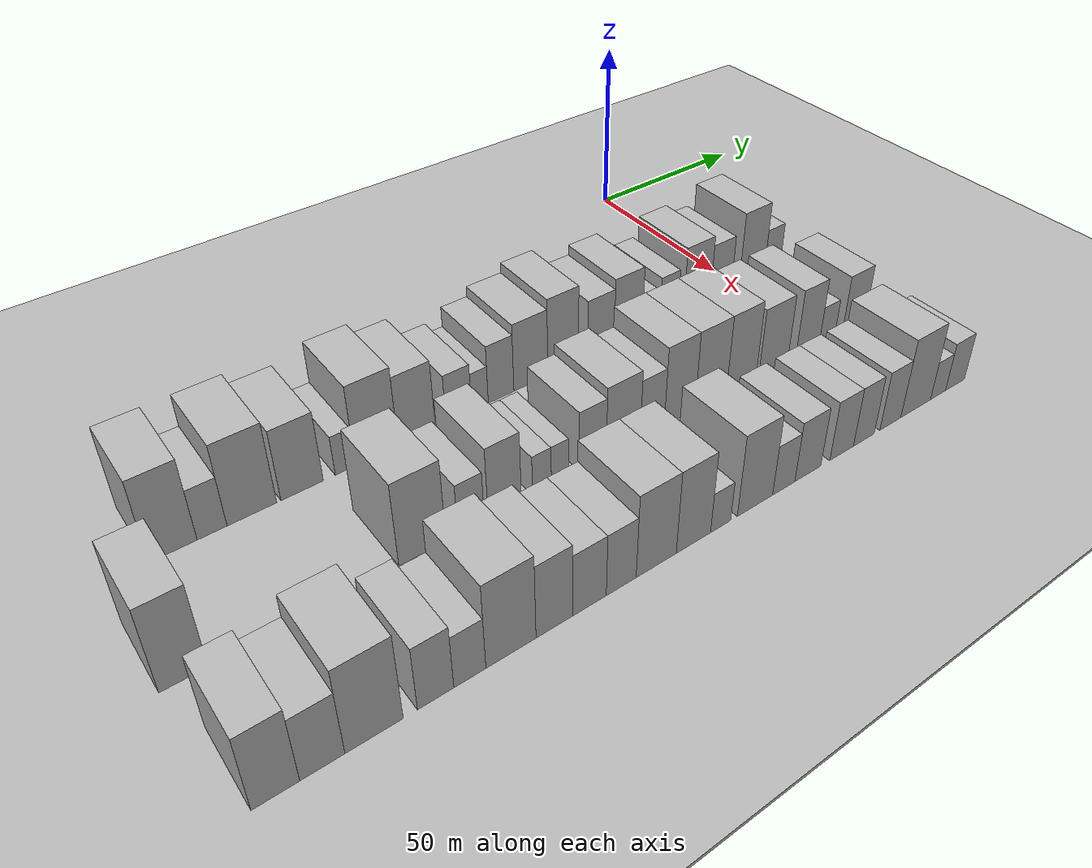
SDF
<sdf version="1.6">
 <world name="default">
  <include><name>ground_plane_1</name><uri>model://HANNAS_ground_plane</uri></include>
  <include>
   <name>ground_plane_2</name>
   <uri>model://HANNAS_ground_plane</uri>
   <pose>100 0 0  0 0 0</pose>
  </include>
  <model name="building_22">
   <static>1</static>
   <pose>50.0000 -163.7827 0 0.000000 0.000000 0.000000</pose>
   <link name="link">
    <pose>0 0 12.00 0 0 0</pose>
    <collision name="collision"><geometry><box><size>20.0000 10.5719 24.0000</size></box></geometry></collision>
    <visual name="visual">
     <cast_shadows>0</cast_shadows>
     <geometry><box><size>20.0000 10.5719 24.0000</size></box></geometry>
     <material>
      <script>
       <uri>model://HANNAS_wall/materials/scripts</uri>
       <uri>model://HANNAS_wall/materials/textures</uri>
       <name>vrc/HANNAS_wall</name>
      </script>
     </material>
    </visual>
   </link>
  </model>
  <model name="building_23">
   <static>1</static>
   <pose>50.0000 -155.1329 0 0.000000 0.000000 0.000000</pose>
   <link name="link">
    <pose>0 0 7.50 0 0 0</pose>
    <collision name="collision"><geometry><box><size>20.0000 6.7278 15.0000</size></box></geometry></collision>
    <visual name="visual">
     <cast_shadows>0</cast_shadows>
     <geometry><box><size>20.0000 6.7278 15.0000</size></box></geometry>
     <material>
      <script>
       <uri>model://HANNAS_wall/materials/scripts</uri>
       <uri>model://HANNAS_wall/materials/textures</uri>
       <name>vrc/HANNAS_wall</name>
      </script>
     </material>
    </visual>
   </link>
  </model>
  <model name="building_24">
   <static>1</static>
   <pose>50.0000 -145.9663 0 0.000000 0.000000 0.000000</pose>
   <link name="link">
    <pose>0 0 12.00 0 0 0</pose>
    <collision name="collision"><geometry><box><size>20.0000 11.6054 24.0000</size></box></geometry></collision>
    <visual name="visual">
     <cast_shadows>0</cast_shadows>
     <geometry><box><size>20.0000 11.6054 24.0000</size></box></geometry>
     <material>
      <script>
       <uri>model://HANNAS_wall/materials/scripts</uri>
       <uri>model://HANNAS_wall/materials/textures</uri>
       <name>vrc/HANNAS_wall</name>
      </script>
     </material>
    </visual>
   </link>
  </model>
  <model name="building_25">
   <static>1</static>
   <pose>50.0000 -133.9820 0 0.000000 0.000000 0.000000</pose>
   <link name="link">
    <pose>0 0 10.50 0 0 0</pose>
    <collision name="collision"><geometry><box><size>20.0000 10.3632 21.0000</size></box></geometry></collision>
    <visual name="visual">
     <cast_shadows>0</cast_shadows>
     <geometry><box><size>20.0000 10.3632 21.0000</size></box></geometry>
     <material>
      <script>
       <uri>model://HANNAS_wall/materials/scripts</uri>
       <uri>model://HANNAS_wall/materials/textures</uri>
       <name>vrc/HANNAS_wall</name>
      </script>
     </material>
    </visual>
   </link>
  </model>
  <model name="building_26">
   <static>1</static>
   <pose>50.0000 -123.2500 0 0.000000 0.000000 0.000000</pose>
   <link name="link">
    <pose>0 0 6.00 0 0 0</pose>
    <collision name="collision"><geometry><box><size>20.0000 5.1008 12.0000</size></box></geometry></collision>
    <visual name="visual">
     <cast_shadows>0</cast_shadows>
     <geometry><box><size>20.0000 5.1008 12.0000</size></box></geometry>
     <material>
      <script>
       <uri>model://HANNAS_wall/materials/scripts</uri>
       <uri>model://HANNAS_wall/materials/textures</uri>
       <name>vrc/HANNAS_wall</name>
      </script>
     </material>
    </visual>
   </link>
  </model>
  <model name="building_27">
   <static>1</static>
   <pose>50.0000 -115.0750 0 0.000000 0.000000 0.000000</pose>
   <link name="link">
    <pose>0 0 12.00 0 0 0</pose>
    <collision name="collision"><geometry><box><size>20.0000 11.2492 24.0000</size></box></geometry></collision>
    <visual name="visual">
     <cast_shadows>0</cast_shadows>
     <geometry><box><size>20.0000 11.2492 24.0000</size></box></geometry>
     <material>
      <script>
       <uri>model://HANNAS_wall/materials/scripts</uri>
       <uri>model://HANNAS_wall/materials/textures</uri>
       <name>vrc/HANNAS_wall</name>
      </script>
     </material>
    </visual>
   </link>
  </model>
  <model name="building_28">
   <static>1</static>
   <pose>50.0000 -104.3734 0 0.000000 0.000000 0.000000</pose>
   <link name="link">
    <pose>0 0 10.50 0 0 0</pose>
    <collision name="collision"><geometry><box><size>20.0000 10.1541 21.0000</size></box></geometry></collision>
    <visual name="visual">
     <cast_shadows>0</cast_shadows>
     <geometry><box><size>20.0000 10.1541 21.0000</size></box></geometry>
     <material>
      <script>
       <uri>model://HANNAS_wall/materials/scripts</uri>
       <uri>model://HANNAS_wall/materials/textures</uri>
       <name>vrc/HANNAS_wall</name>
      </script>
     </material>
    </visual>
   </link>
  </model>
  <model name="building_29">
   <static>1</static>
   <pose>50.0000 -92.6563 0 0.000000 0.000000 0.000000</pose>
   <link name="link">
    <pose>0 0 7.50 0 0 0</pose>
    <collision name="collision"><geometry><box><size>20.0000 7.2801 15.0000</size></box></geometry></collision>
    <visual name="visual">
     <cast_shadows>0</cast_shadows>
     <geometry><box><size>20.0000 7.2801 15.0000</size></box></geometry>
     <material>
      <script>
       <uri>model://HANNAS_wall/materials/scripts</uri>
       <uri>model://HANNAS_wall/materials/textures</uri>
       <name>vrc/HANNAS_wall</name>
      </script>
     </material>
    </visual>
   </link>
  </model>
  <model name="building_30">
   <static>1</static>
   <pose>50.0000 -86.5991 0 0.000000 0.000000 0.000000</pose>
   <link name="link">
    <pose>0 0 6.00 0 0 0</pose>
    <collision name="collision"><geometry><box><size>20.0000 4.8341 12.0000</size></box></geometry></collision>
    <visual name="visual">
     <cast_shadows>0</cast_shadows>
     <geometry><box><size>20.0000 4.8341 12.0000</size></box></geometry>
     <material>
      <script>
       <uri>model://HANNAS_wall/materials/scripts</uri>
       <uri>model://HANNAS_wall/materials/textures</uri>
       <name>vrc/HANNAS_wall</name>
      </script>
     </material>
    </visual>
   </link>
  </model>
  <model name="building_31">
   <static>1</static>
   <pose>50.0000 -80.3739 0 0.000000 0.000000 0.000000</pose>
   <link name="link">
    <pose>0 0 9.00 0 0 0</pose>
    <collision name="collision"><geometry><box><size>20.0000 7.6165 18.0000</size></box></geometry></collision>
    <visual name="visual">
     <cast_shadows>0</cast_shadows>
     <geometry><box><size>20.0000 7.6165 18.0000</size></box></geometry>
     <material>
      <script>
       <uri>model://HANNAS_wall/materials/scripts</uri>
       <uri>model://HANNAS_wall/materials/textures</uri>
       <name>vrc/HANNAS_wall</name>
      </script>
     </material>
    </visual>
   </link>
  </model>
  <model name="building_32">
   <static>1</static>
   <pose>50.0000 -71.3733 0 0.000000 0.000000 0.000000</pose>
   <link name="link">
    <pose>0 0 10.50 0 0 0</pose>
    <collision name="collision"><geometry><box><size>20.0000 10.3846 21.0000</size></box></geometry></collision>
    <visual name="visual">
     <cast_shadows>0</cast_shadows>
     <geometry><box><size>20.0000 10.3846 21.0000</size></box></geometry>
     <material>
      <script>
       <uri>model://HANNAS_wall/materials/scripts</uri>
       <uri>model://HANNAS_wall/materials/textures</uri>
       <name>vrc/HANNAS_wall</name>
      </script>
     </material>
    </visual>
   </link>
  </model>
  <model name="building_33">
   <static>1</static>
   <pose>50.0000 -61.3326 0 0.000000 0.000000 0.000000</pose>
   <link name="link">
    <pose>0 0 12.00 0 0 0</pose>
    <collision name="collision"><geometry><box><size>20.0000 9.6969 24.0000</size></box></geometry></collision>
    <visual name="visual">
     <cast_shadows>0</cast_shadows>
     <geometry><box><size>20.0000 9.6969 24.0000</size></box></geometry>
     <material>
      <script>
       <uri>model://HANNAS_wall/materials/scripts</uri>
       <uri>model://HANNAS_wall/materials/textures</uri>
       <name>vrc/HANNAS_wall</name>
      </script>
     </material>
    </visual>
   </link>
  </model>
  <model name="building_34">
   <static>1</static>
   <pose>50.0000 -49.1256 0 0.000000 0.000000 0.000000</pose>
   <link name="link">
    <pose>0 0 9.00 0 0 0</pose>
    <collision name="collision"><geometry><box><size>20.0000 8.7171 18.0000</size></box></geometry></collision>
    <visual name="visual">
     <cast_shadows>0</cast_shadows>
     <geometry><box><size>20.0000 8.7171 18.0000</size></box></geometry>
     <material>
      <script>
       <uri>model://HANNAS_wall/materials/scripts</uri>
       <uri>model://HANNAS_wall/materials/textures</uri>
       <name>vrc/HANNAS_wall</name>
      </script>
     </material>
    </visual>
   </link>
  </model>
  <model name="building_35">
   <static>1</static>
   <pose>50.0000 -40.0122 0 0.000000 0.000000 0.000000</pose>
   <link name="link">
    <pose>0 0 10.50 0 0 0</pose>
    <collision name="collision"><geometry><box><size>20.0000 9.5096 21.0000</size></box></geometry></collision>
    <visual name="visual">
     <cast_shadows>0</cast_shadows>
     <geometry><box><size>20.0000 9.5096 21.0000</size></box></geometry>
     <material>
      <script>
       <uri>model://HANNAS_wall/materials/scripts</uri>
       <uri>model://HANNAS_wall/materials/textures</uri>
       <name>vrc/HANNAS_wall</name>
      </script>
     </material>
    </visual>
   </link>
  </model>
  <model name="building_36">
   <static>1</static>
   <pose>50.0000 -32.6722 0 0.000000 0.000000 0.000000</pose>
   <link name="link">
    <pose>0 0 6.00 0 0 0</pose>
    <collision name="collision"><geometry><box><size>20.0000 5.1704 12.0000</size></box></geometry></collision>
    <visual name="visual">
     <cast_shadows>0</cast_shadows>
     <geometry><box><size>20.0000 5.1704 12.0000</size></box></geometry>
     <material>
      <script>
       <uri>model://HANNAS_wall/materials/scripts</uri>
       <uri>model://HANNAS_wall/materials/textures</uri>
       <name>vrc/HANNAS_wall</name>
      </script>
     </material>
    </visual>
   </link>
  </model>
  <model name="building_37">
   <static>1</static>
   <pose>50.0000 -25.8383 0 0.000000 0.000000 0.000000</pose>
   <link name="link">
    <pose>0 0 7.50 0 0 0</pose>
    <collision name="collision"><geometry><box><size>20.0000 6.4973 15.0000</size></box></geometry></collision>
    <visual name="visual">
     <cast_shadows>0</cast_shadows>
     <geometry><box><size>20.0000 6.4973 15.0000</size></box></geometry>
     <material>
      <script>
       <uri>model://HANNAS_wall/materials/scripts</uri>
       <uri>model://HANNAS_wall/materials/textures</uri>
       <name>vrc/HANNAS_wall</name>
      </script>
     </material>
    </visual>
   </link>
  </model>
  <model name="building_38">
   <static>1</static>
   <pose>50.0000 -15.7071 0 0.000000 0.000000 0.000000</pose>
   <link name="link">
    <pose>0 0 10.50 0 0 0</pose>
    <collision name="collision"><geometry><box><size>20.0000 9.7650 21.0000</size></box></geometry></collision>
    <visual name="visual">
     <cast_shadows>0</cast_shadows>
     <geometry><box><size>20.0000 9.7650 21.0000</size></box></geometry>
     <material>
      <script>
       <uri>model://HANNAS_wall/materials/scripts</uri>
       <uri>model://HANNAS_wall/materials/textures</uri>
       <name>vrc/HANNAS_wall</name>
      </script>
     </material>
    </visual>
   </link>
  </model>
  <model name="building_39">
   <static>1</static>
   <pose>50.0000 -6.8539 0 0.000000 0.000000 0.000000</pose>
   <link name="link">
    <pose>0 0 9.00 0 0 0</pose>
    <collision name="collision"><geometry><box><size>20.0000 7.9415 18.0000</size></box></geometry></collision>
    <visual name="visual">
     <cast_shadows>0</cast_shadows>
     <geometry><box><size>20.0000 7.9415 18.0000</size></box></geometry>
     <material>
      <script>
       <uri>model://HANNAS_wall/materials/scripts</uri>
       <uri>model://HANNAS_wall/materials/textures</uri>
       <name>vrc/HANNAS_wall</name>
      </script>
     </material>
    </visual>
   </link>
  </model>
  <model name="building_40">
   <static>1</static>
   <pose>50.0000 4.9906 0 0.000000 0.000000 0.000000</pose>
   <link name="link">
    <pose>0 0 12.00 0 0 0</pose>
    <collision name="collision"><geometry><box><size>20.0000 9.7473 24.0000</size></box></geometry></collision>
    <visual name="visual">
     <cast_shadows>0</cast_shadows>
     <geometry><box><size>20.0000 9.7473 24.0000</size></box></geometry>
     <material>
      <script>
       <uri>model://HANNAS_wall/materials/scripts</uri>
       <uri>model://HANNAS_wall/materials/textures</uri>
       <name>vrc/HANNAS_wall</name>
      </script>
     </material>
    </visual>
   </link>
  </model>
  <model name="building_41">
   <static>1</static>
   <pose>50.0000 13.0793 0 0.000000 0.000000 0.000000</pose>
   <link name="link">
    <pose>0 0 7.50 0 0 0</pose>
    <collision name="collision"><geometry><box><size>20.0000 6.4302 15.0000</size></box></geometry></collision>
    <visual name="visual">
     <cast_shadows>0</cast_shadows>
     <geometry><box><size>20.0000 6.4302 15.0000</size></box></geometry>
     <material>
      <script>
       <uri>model://HANNAS_wall/materials/scripts</uri>
       <uri>model://HANNAS_wall/materials/textures</uri>
       <name>vrc/HANNAS_wall</name>
      </script>
     </material>
    </visual>
   </link>
  </model>
  <model name="building_100">
   <static>1</static>
   <pose>82.0000 -174.0727 0 0.000000 0.000000 0.000000</pose>
   <link name="link">
    <pose>0 0 12.00 0 0 0</pose>
    <collision name="collision"><geometry><box><size>20.0000 9.6658 24.0000</size></box></geometry></collision>
    <visual name="visual">
     <cast_shadows>0</cast_shadows>
     <geometry><box><size>20.0000 9.6658 24.0000</size></box></geometry>
     <material>
      <script>
       <uri>model://HANNAS_wall/materials/scripts</uri>
       <uri>model://HANNAS_wall/materials/textures</uri>
       <name>vrc/HANNAS_wall</name>
      </script>
     </material>
    </visual>
   </link>
  </model>
  <model name="building_101">
   <static>1</static>
   <pose>82.0000 -121.9243 0 0.000000 0.000000 0.000000</pose>
   <link name="link">
    <pose>0 0 12.00 0 0 0</pose>
    <collision name="collision"><geometry><box><size>20.0000 11.5437 24.0000</size></box></geometry></collision>
    <visual name="visual">
     <cast_shadows>0</cast_shadows>
     <geometry><box><size>20.0000 11.5437 24.0000</size></box></geometry>
     <material>
      <script>
       <uri>model://HANNAS_wall/materials/scripts</uri>
       <uri>model://HANNAS_wall/materials/textures</uri>
       <name>vrc/HANNAS_wall</name>
      </script>
     </material>
    </visual>
   </link>
  </model>
  <model name="building_102">
   <static>1</static>
   <pose>82.0000 -109.7860 0 0.000000 0.000000 0.000000</pose>
   <link name="link">
    <pose>0 0 7.50 0 0 0</pose>
    <collision name="collision"><geometry><box><size>20.0000 6.7328 15.0000</size></box></geometry></collision>
    <visual name="visual">
     <cast_shadows>0</cast_shadows>
     <geometry><box><size>20.0000 6.7328 15.0000</size></box></geometry>
     <material>
      <script>
       <uri>model://HANNAS_wall/materials/scripts</uri>
       <uri>model://HANNAS_wall/materials/textures</uri>
       <name>vrc/HANNAS_wall</name>
      </script>
     </material>
    </visual>
   </link>
  </model>
  <model name="building_103">
   <static>1</static>
   <pose>82.0000 -101.0111 0 0.000000 0.000000 0.000000</pose>
   <link name="link">
    <pose>0 0 10.50 0 0 0</pose>
    <collision name="collision"><geometry><box><size>20.0000 8.8170 21.0000</size></box></geometry></collision>
    <visual name="visual">
     <cast_shadows>0</cast_shadows>
     <geometry><box><size>20.0000 8.8170 21.0000</size></box></geometry>
     <material>
      <script>
       <uri>model://HANNAS_wall/materials/scripts</uri>
       <uri>model://HANNAS_wall/materials/textures</uri>
       <name>vrc/HANNAS_wall</name>
      </script>
     </material>
    </visual>
   </link>
  </model>
  <model name="building_104">
   <static>1</static>
   <pose>82.0000 -91.0064 0 0.000000 0.000000 0.000000</pose>
   <link name="link">
    <pose>0 0 6.00 0 0 0</pose>
    <collision name="collision"><geometry><box><size>20.0000 5.1925 12.0000</size></box></geometry></collision>
    <visual name="visual">
     <cast_shadows>0</cast_shadows>
     <geometry><box><size>20.0000 5.1925 12.0000</size></box></geometry>
     <material>
      <script>
       <uri>model://HANNAS_wall/materials/scripts</uri>
       <uri>model://HANNAS_wall/materials/textures</uri>
       <name>vrc/HANNAS_wall</name>
      </script>
     </material>
    </visual>
   </link>
  </model>
  <model name="building_105">
   <static>1</static>
   <pose>82.0000 -85.9991 0 0.000000 0.000000 0.000000</pose>
   <link name="link">
    <pose>0 0 6.00 0 0 0</pose>
    <collision name="collision"><geometry><box><size>20.0000 4.8220 12.0000</size></box></geometry></collision>
    <visual name="visual">
     <cast_shadows>0</cast_shadows>
     <geometry><box><size>20.0000 4.8220 12.0000</size></box></geometry>
     <material>
      <script>
       <uri>model://HANNAS_wall/materials/scripts</uri>
       <uri>model://HANNAS_wall/materials/textures</uri>
       <name>vrc/HANNAS_wall</name>
      </script>
     </material>
    </visual>
   </link>
  </model>
  <model name="building_106">
   <static>1</static>
   <pose>82.0000 -76.6664 0 0.000000 0.000000 0.000000</pose>
   <link name="link">
    <pose>0 0 9.00 0 0 0</pose>
    <collision name="collision"><geometry><box><size>20.0000 7.8436 18.0000</size></box></geometry></collision>
    <visual name="visual">
     <cast_shadows>0</cast_shadows>
     <geometry><box><size>20.0000 7.8436 18.0000</size></box></geometry>
     <material>
      <script>
       <uri>model://HANNAS_wall/materials/scripts</uri>
       <uri>model://HANNAS_wall/materials/textures</uri>
       <name>vrc/HANNAS_wall</name>
      </script>
     </material>
    </visual>
   </link>
  </model>
  <model name="building_107">
   <static>1</static>
   <pose>82.0000 -67.6405 0 0.000000 0.000000 0.000000</pose>
   <link name="link">
    <pose>0 0 10.50 0 0 0</pose>
    <collision name="collision"><geometry><box><size>20.0000 10.2082 21.0000</size></box></geometry></collision>
    <visual name="visual">
     <cast_shadows>0</cast_shadows>
     <geometry><box><size>20.0000 10.2082 21.0000</size></box></geometry>
     <material>
      <script>
       <uri>model://HANNAS_wall/materials/scripts</uri>
       <uri>model://HANNAS_wall/materials/textures</uri>
       <name>vrc/HANNAS_wall</name>
      </script>
     </material>
    </visual>
   </link>
  </model>
  <model name="building_108">
   <static>1</static>
   <pose>82.0000 -58.7914 0 0.000000 0.000000 0.000000</pose>
   <link name="link">
    <pose>0 0 9.00 0 0 0</pose>
    <collision name="collision"><geometry><box><size>20.0000 7.4899 18.0000</size></box></geometry></collision>
    <visual name="visual">
     <cast_shadows>0</cast_shadows>
     <geometry><box><size>20.0000 7.4899 18.0000</size></box></geometry>
     <material>
      <script>
       <uri>model://HANNAS_wall/materials/scripts</uri>
       <uri>model://HANNAS_wall/materials/textures</uri>
       <name>vrc/HANNAS_wall</name>
      </script>
     </material>
    </visual>
   </link>
  </model>
  <model name="building_109">
   <static>1</static>
   <pose>82.0000 -50.1443 0 0.000000 0.000000 0.000000</pose>
   <link name="link">
    <pose>0 0 12.00 0 0 0</pose>
    <collision name="collision"><geometry><box><size>20.0000 9.8044 24.0000</size></box></geometry></collision>
    <visual name="visual">
     <cast_shadows>0</cast_shadows>
     <geometry><box><size>20.0000 9.8044 24.0000</size></box></geometry>
     <material>
      <script>
       <uri>model://HANNAS_wall/materials/scripts</uri>
       <uri>model://HANNAS_wall/materials/textures</uri>
       <name>vrc/HANNAS_wall</name>
      </script>
     </material>
    </visual>
   </link>
  </model>
  <model name="building_110">
   <static>1</static>
   <pose>82.0000 -40.0097 0 0.000000 0.000000 0.000000</pose>
   <link name="link">
    <pose>0 0 12.00 0 0 0</pose>
    <collision name="collision"><geometry><box><size>20.0000 10.4648 24.0000</size></box></geometry></collision>
    <visual name="visual">
     <cast_shadows>0</cast_shadows>
     <geometry><box><size>20.0000 10.4648 24.0000</size></box></geometry>
     <material>
      <script>
       <uri>model://HANNAS_wall/materials/scripts</uri>
       <uri>model://HANNAS_wall/materials/textures</uri>
       <name>vrc/HANNAS_wall</name>
      </script>
     </material>
    </visual>
   </link>
  </model>
  <model name="building_111">
   <static>1</static>
   <pose>82.0000 -29.6985 0 0.000000 0.000000 0.000000</pose>
   <link name="link">
    <pose>0 0 12.00 0 0 0</pose>
    <collision name="collision"><geometry><box><size>20.0000 10.1575 24.0000</size></box></geometry></collision>
    <visual name="visual">
     <cast_shadows>0</cast_shadows>
     <geometry><box><size>20.0000 10.1575 24.0000</size></box></geometry>
     <material>
      <script>
       <uri>model://HANNAS_wall/materials/scripts</uri>
       <uri>model://HANNAS_wall/materials/textures</uri>
       <name>vrc/HANNAS_wall</name>
      </script>
     </material>
    </visual>
   </link>
  </model>
  <model name="building_112">
   <static>1</static>
   <pose>82.0000 -18.4606 0 0.000000 0.000000 0.000000</pose>
   <link name="link">
    <pose>0 0 10.50 0 0 0</pose>
    <collision name="collision"><geometry><box><size>20.0000 10.3182 21.0000</size></box></geometry></collision>
    <visual name="visual">
     <cast_shadows>0</cast_shadows>
     <geometry><box><size>20.0000 10.3182 21.0000</size></box></geometry>
     <material>
      <script>
       <uri>model://HANNAS_wall/materials/scripts</uri>
       <uri>model://HANNAS_wall/materials/textures</uri>
       <name>vrc/HANNAS_wall</name>
      </script>
     </material>
    </visual>
   </link>
  </model>
  <model name="building_113">
   <static>1</static>
   <pose>82.0000 -5.9458 0 0.000000 0.000000 0.000000</pose>
   <link name="link">
    <pose>0 0 10.50 0 0 0</pose>
    <collision name="collision"><geometry><box><size>20.0000 8.7115 21.0000</size></box></geometry></collision>
    <visual name="visual">
     <cast_shadows>0</cast_shadows>
     <geometry><box><size>20.0000 8.7115 21.0000</size></box></geometry>
     <material>
      <script>
       <uri>model://HANNAS_wall/materials/scripts</uri>
       <uri>model://HANNAS_wall/materials/textures</uri>
       <name>vrc/HANNAS_wall</name>
      </script>
     </material>
    </visual>
   </link>
  </model>
  <model name="building_114">
   <static>1</static>
   <pose>82.0000 1.3598 0 0.000000 0.000000 0.000000</pose>
   <link name="link">
    <pose>0 0 6.00 0 0 0</pose>
    <collision name="collision"><geometry><box><size>20.0000 5.8996 12.0000</size></box></geometry></collision>
    <visual name="visual">
     <cast_shadows>0</cast_shadows>
     <geometry><box><size>20.0000 5.8996 12.0000</size></box></geometry>
     <material>
      <script>
       <uri>model://HANNAS_wall/materials/scripts</uri>
       <uri>model://HANNAS_wall/materials/textures</uri>
       <name>vrc/HANNAS_wall</name>
      </script>
     </material>
    </visual>
   </link>
  </model>
  <model name="building_115">
   <static>1</static>
   <pose>82.0000 11.7708 0 0.000000 0.000000 0.000000</pose>
   <link name="link">
    <pose>0 0 9.00 0 0 0</pose>
    <collision name="collision"><geometry><box><size>20.0000 8.9224 18.0000</size></box></geometry></collision>
    <visual name="visual">
     <cast_shadows>0</cast_shadows>
     <geometry><box><size>20.0000 8.9224 18.0000</size></box></geometry>
     <material>
      <script>
       <uri>model://HANNAS_wall/materials/scripts</uri>
       <uri>model://HANNAS_wall/materials/textures</uri>
       <name>vrc/HANNAS_wall</name>
      </script>
     </material>
    </visual>
   </link>
  </model>
  <model name="building_172">
   <static>1</static>
   <pose>114.0000 -170.3078 0 0.000000 0.000000 0.000000</pose>
   <link name="link">
    <pose>0 0 10.50 0 0 0</pose>
    <collision name="collision"><geometry><box><size>20.0000 9.0661 21.0000</size></box></geometry></collision>
    <visual name="visual">
     <cast_shadows>0</cast_shadows>
     <geometry><box><size>20.0000 9.0661 21.0000</size></box></geometry>
     <material>
      <script>
       <uri>model://HANNAS_wall/materials/scripts</uri>
       <uri>model://HANNAS_wall/materials/textures</uri>
       <name>vrc/HANNAS_wall</name>
      </script>
     </material>
    </visual>
   </link>
  </model>
  <model name="building_173">
   <static>1</static>
   <pose>114.0000 -161.4042 0 0.000000 0.000000 0.000000</pose>
   <link name="link">
    <pose>0 0 9.00 0 0 0</pose>
    <collision name="collision"><geometry><box><size>20.0000 8.7411 18.0000</size></box></geometry></collision>
    <visual name="visual">
     <cast_shadows>0</cast_shadows>
     <geometry><box><size>20.0000 8.7411 18.0000</size></box></geometry>
     <material>
      <script>
       <uri>model://HANNAS_wall/materials/scripts</uri>
       <uri>model://HANNAS_wall/materials/textures</uri>
       <name>vrc/HANNAS_wall</name>
      </script>
     </material>
    </visual>
   </link>
  </model>
  <model name="building_174">
   <static>1</static>
   <pose>114.0000 -151.1067 0 0.000000 0.000000 0.000000</pose>
   <link name="link">
    <pose>0 0 12.00 0 0 0</pose>
    <collision name="collision"><geometry><box><size>20.0000 11.8539 24.0000</size></box></geometry></collision>
    <visual name="visual">
     <cast_shadows>0</cast_shadows>
     <geometry><box><size>20.0000 11.8539 24.0000</size></box></geometry>
     <material>
      <script>
       <uri>model://HANNAS_wall/materials/scripts</uri>
       <uri>model://HANNAS_wall/materials/textures</uri>
       <name>vrc/HANNAS_wall</name>
      </script>
     </material>
    </visual>
   </link>
  </model>
  <model name="building_175">
   <static>1</static>
   <pose>114.0000 -138.2420 0 0.000000 0.000000 0.000000</pose>
   <link name="link">
    <pose>0 0 9.00 0 0 0</pose>
    <collision name="collision"><geometry><box><size>20.0000 7.8756 18.0000</size></box></geometry></collision>
    <visual name="visual">
     <cast_shadows>0</cast_shadows>
     <geometry><box><size>20.0000 7.8756 18.0000</size></box></geometry>
     <material>
      <script>
       <uri>model://HANNAS_wall/materials/scripts</uri>
       <uri>model://HANNAS_wall/materials/textures</uri>
       <name>vrc/HANNAS_wall</name>
      </script>
     </material>
    </visual>
   </link>
  </model>
  <model name="building_176">
   <static>1</static>
   <pose>114.0000 -130.7274 0 0.000000 0.000000 0.000000</pose>
   <link name="link">
    <pose>0 0 7.50 0 0 0</pose>
    <collision name="collision"><geometry><box><size>20.0000 7.1535 15.0000</size></box></geometry></collision>
    <visual name="visual">
     <cast_shadows>0</cast_shadows>
     <geometry><box><size>20.0000 7.1535 15.0000</size></box></geometry>
     <material>
      <script>
       <uri>model://HANNAS_wall/materials/scripts</uri>
       <uri>model://HANNAS_wall/materials/textures</uri>
       <name>vrc/HANNAS_wall</name>
      </script>
     </material>
    </visual>
   </link>
  </model>
  <model name="building_177">
   <static>1</static>
   <pose>114.0000 -121.3071 0 0.000000 0.000000 0.000000</pose>
   <link name="link">
    <pose>0 0 12.00 0 0 0</pose>
    <collision name="collision"><geometry><box><size>20.0000 11.6871 24.0000</size></box></geometry></collision>
    <visual name="visual">
     <cast_shadows>0</cast_shadows>
     <geometry><box><size>20.0000 11.6871 24.0000</size></box></geometry>
     <material>
      <script>
       <uri>model://HANNAS_wall/materials/scripts</uri>
       <uri>model://HANNAS_wall/materials/textures</uri>
       <name>vrc/HANNAS_wall</name>
      </script>
     </material>
    </visual>
   </link>
  </model>
  <model name="building_178">
   <static>1</static>
   <pose>114.0000 -111.0268 0 0.000000 0.000000 0.000000</pose>
   <link name="link">
    <pose>0 0 10.50 0 0 0</pose>
    <collision name="collision"><geometry><box><size>20.0000 8.8734 21.0000</size></box></geometry></collision>
    <visual name="visual">
     <cast_shadows>0</cast_shadows>
     <geometry><box><size>20.0000 8.8734 21.0000</size></box></geometry>
     <material>
      <script>
       <uri>model://HANNAS_wall/materials/scripts</uri>
       <uri>model://HANNAS_wall/materials/textures</uri>
       <name>vrc/HANNAS_wall</name>
      </script>
     </material>
    </visual>
   </link>
  </model>
  <model name="building_179">
   <static>1</static>
   <pose>114.0000 -102.3050 0 0.000000 0.000000 0.000000</pose>
   <link name="link">
    <pose>0 0 9.00 0 0 0</pose>
    <collision name="collision"><geometry><box><size>20.0000 8.5702 18.0000</size></box></geometry></collision>
    <visual name="visual">
     <cast_shadows>0</cast_shadows>
     <geometry><box><size>20.0000 8.5702 18.0000</size></box></geometry>
     <material>
      <script>
       <uri>model://HANNAS_wall/materials/scripts</uri>
       <uri>model://HANNAS_wall/materials/textures</uri>
       <name>vrc/HANNAS_wall</name>
      </script>
     </material>
    </visual>
   </link>
  </model>
  <model name="building_180">
   <static>1</static>
   <pose>114.0000 -94.1023 0 0.000000 0.000000 0.000000</pose>
   <link name="link">
    <pose>0 0 9.00 0 0 0</pose>
    <collision name="collision"><geometry><box><size>20.0000 7.8352 18.0000</size></box></geometry></collision>
    <visual name="visual">
     <cast_shadows>0</cast_shadows>
     <geometry><box><size>20.0000 7.8352 18.0000</size></box></geometry>
     <material>
      <script>
       <uri>model://HANNAS_wall/materials/scripts</uri>
       <uri>model://HANNAS_wall/materials/textures</uri>
       <name>vrc/HANNAS_wall</name>
      </script>
     </material>
    </visual>
   </link>
  </model>
  <model name="building_181">
   <static>1</static>
   <pose>114.0000 -84.7124 0 0.000000 0.000000 0.000000</pose>
   <link name="link">
    <pose>0 0 12.00 0 0 0</pose>
    <collision name="collision"><geometry><box><size>20.0000 10.9444 24.0000</size></box></geometry></collision>
    <visual name="visual">
     <cast_shadows>0</cast_shadows>
     <geometry><box><size>20.0000 10.9444 24.0000</size></box></geometry>
     <material>
      <script>
       <uri>model://HANNAS_wall/materials/scripts</uri>
       <uri>model://HANNAS_wall/materials/textures</uri>
       <name>vrc/HANNAS_wall</name>
      </script>
     </material>
    </visual>
   </link>
  </model>
  <model name="building_182">
   <static>1</static>
   <pose>114.0000 -74.3691 0 0.000000 0.000000 0.000000</pose>
   <link name="link">
    <pose>0 0 12.00 0 0 0</pose>
    <collision name="collision"><geometry><box><size>20.0000 9.7423 24.0000</size></box></geometry></collision>
    <visual name="visual">
     <cast_shadows>0</cast_shadows>
     <geometry><box><size>20.0000 9.7423 24.0000</size></box></geometry>
     <material>
      <script>
       <uri>model://HANNAS_wall/materials/scripts</uri>
       <uri>model://HANNAS_wall/materials/textures</uri>
       <name>vrc/HANNAS_wall</name>
      </script>
     </material>
    </visual>
   </link>
  </model>
  <model name="building_183">
   <static>1</static>
   <pose>114.0000 -66.5475 0 0.000000 0.000000 0.000000</pose>
   <link name="link">
    <pose>0 0 6.00 0 0 0</pose>
    <collision name="collision"><geometry><box><size>20.0000 5.9008 12.0000</size></box></geometry></collision>
    <visual name="visual">
     <cast_shadows>0</cast_shadows>
     <geometry><box><size>20.0000 5.9008 12.0000</size></box></geometry>
     <material>
      <script>
       <uri>model://HANNAS_wall/materials/scripts</uri>
       <uri>model://HANNAS_wall/materials/textures</uri>
       <name>vrc/HANNAS_wall</name>
      </script>
     </material>
    </visual>
   </link>
  </model>
  <model name="building_184">
   <static>1</static>
   <pose>114.0000 -56.2211 0 0.000000 0.000000 0.000000</pose>
   <link name="link">
    <pose>0 0 12.00 0 0 0</pose>
    <collision name="collision"><geometry><box><size>20.0000 10.7522 24.0000</size></box></geometry></collision>
    <visual name="visual">
     <cast_shadows>0</cast_shadows>
     <geometry><box><size>20.0000 10.7522 24.0000</size></box></geometry>
     <material>
      <script>
       <uri>model://HANNAS_wall/materials/scripts</uri>
       <uri>model://HANNAS_wall/materials/textures</uri>
       <name>vrc/HANNAS_wall</name>
      </script>
     </material>
    </visual>
   </link>
  </model>
  <model name="building_185">
   <static>1</static>
   <pose>114.0000 -47.3295 0 0.000000 0.000000 0.000000</pose>
   <link name="link">
    <pose>0 0 7.50 0 0 0</pose>
    <collision name="collision"><geometry><box><size>20.0000 7.0310 15.0000</size></box></geometry></collision>
    <visual name="visual">
     <cast_shadows>0</cast_shadows>
     <geometry><box><size>20.0000 7.0310 15.0000</size></box></geometry>
     <material>
      <script>
       <uri>model://HANNAS_wall/materials/scripts</uri>
       <uri>model://HANNAS_wall/materials/textures</uri>
       <name>vrc/HANNAS_wall</name>
      </script>
     </material>
    </visual>
   </link>
  </model>
  <model name="building_186">
   <static>1</static>
   <pose>114.0000 -39.5809 0 0.000000 0.000000 0.000000</pose>
   <link name="link">
    <pose>0 0 9.00 0 0 0</pose>
    <collision name="collision"><geometry><box><size>20.0000 8.4662 18.0000</size></box></geometry></collision>
    <visual name="visual">
     <cast_shadows>0</cast_shadows>
     <geometry><box><size>20.0000 8.4662 18.0000</size></box></geometry>
     <material>
      <script>
       <uri>model://HANNAS_wall/materials/scripts</uri>
       <uri>model://HANNAS_wall/materials/textures</uri>
       <name>vrc/HANNAS_wall</name>
      </script>
     </material>
    </visual>
   </link>
  </model>
  <model name="building_187">
   <static>1</static>
   <pose>114.0000 -28.3502 0 0.000000 0.000000 0.000000</pose>
   <link name="link">
    <pose>0 0 9.00 0 0 0</pose>
    <collision name="collision"><geometry><box><size>20.0000 7.9952 18.0000</size></box></geometry></collision>
    <visual name="visual">
     <cast_shadows>0</cast_shadows>
     <geometry><box><size>20.0000 7.9952 18.0000</size></box></geometry>
     <material>
      <script>
       <uri>model://HANNAS_wall/materials/scripts</uri>
       <uri>model://HANNAS_wall/materials/textures</uri>
       <name>vrc/HANNAS_wall</name>
      </script>
     </material>
    </visual>
   </link>
  </model>
  <model name="building_188">
   <static>1</static>
   <pose>114.0000 -20.7205 0 0.000000 0.000000 0.000000</pose>
   <link name="link">
    <pose>0 0 9.00 0 0 0</pose>
    <collision name="collision"><geometry><box><size>20.0000 7.2641 18.0000</size></box></geometry></collision>
    <visual name="visual">
     <cast_shadows>0</cast_shadows>
     <geometry><box><size>20.0000 7.2641 18.0000</size></box></geometry>
     <material>
      <script>
       <uri>model://HANNAS_wall/materials/scripts</uri>
       <uri>model://HANNAS_wall/materials/textures</uri>
       <name>vrc/HANNAS_wall</name>
      </script>
     </material>
    </visual>
   </link>
  </model>
  <model name="building_189">
   <static>1</static>
   <pose>114.0000 -11.3065 0 0.000000 0.000000 0.000000</pose>
   <link name="link">
    <pose>0 0 9.00 0 0 0</pose>
    <collision name="collision"><geometry><box><size>20.0000 7.5640 18.0000</size></box></geometry></collision>
    <visual name="visual">
     <cast_shadows>0</cast_shadows>
     <geometry><box><size>20.0000 7.5640 18.0000</size></box></geometry>
     <material>
      <script>
       <uri>model://HANNAS_wall/materials/scripts</uri>
       <uri>model://HANNAS_wall/materials/textures</uri>
       <name>vrc/HANNAS_wall</name>
      </script>
     </material>
    </visual>
   </link>
  </model>
  <model name="building_190">
   <static>1</static>
   <pose>114.0000 -1.9859 0 0.000000 0.000000 0.000000</pose>
   <link name="link">
    <pose>0 0 12.00 0 0 0</pose>
    <collision name="collision"><geometry><box><size>20.0000 11.0771 24.0000</size></box></geometry></collision>
    <visual name="visual">
     <cast_shadows>0</cast_shadows>
     <geometry><box><size>20.0000 11.0771 24.0000</size></box></geometry>
     <material>
      <script>
       <uri>model://HANNAS_wall/materials/scripts</uri>
       <uri>model://HANNAS_wall/materials/textures</uri>
       <name>vrc/HANNAS_wall</name>
      </script>
     </material>
    </visual>
   </link>
  </model>
  <model name="building_191">
   <static>1</static>
   <pose>114.0000 6.4380 0 0.000000 0.000000 0.000000</pose>
   <link name="link">
    <pose>0 0 6.00 0 0 0</pose>
    <collision name="collision"><geometry><box><size>20.0000 5.7708 12.0000</size></box></geometry></collision>
    <visual name="visual">
     <cast_shadows>0</cast_shadows>
     <geometry><box><size>20.0000 5.7708 12.0000</size></box></geometry>
     <material>
      <script>
       <uri>model://HANNAS_wall/materials/scripts</uri>
       <uri>model://HANNAS_wall/materials/textures</uri>
       <name>vrc/HANNAS_wall</name>
      </script>
     </material>
    </visual>
   </link>
  </model>
  <model name="building_192">
   <static>1</static>
   <pose>114.0000 13.0414 0 0.000000 0.000000 0.000000</pose>
   <link name="link">
    <pose>0 0 7.50 0 0 0</pose>
    <collision name="collision"><geometry><box><size>20.0000 7.4360 15.0000</size></box></geometry></collision>
    <visual name="visual">
     <cast_shadows>0</cast_shadows>
     <geometry><box><size>20.0000 7.4360 15.0000</size></box></geometry>
     <material>
      <script>
       <uri>model://HANNAS_wall/materials/scripts</uri>
       <uri>model://HANNAS_wall/materials/textures</uri>
       <name>vrc/HANNAS_wall</name>
      </script>
     </material>
    </visual>
   </link>
  </model>
 </world>
</sdf>
